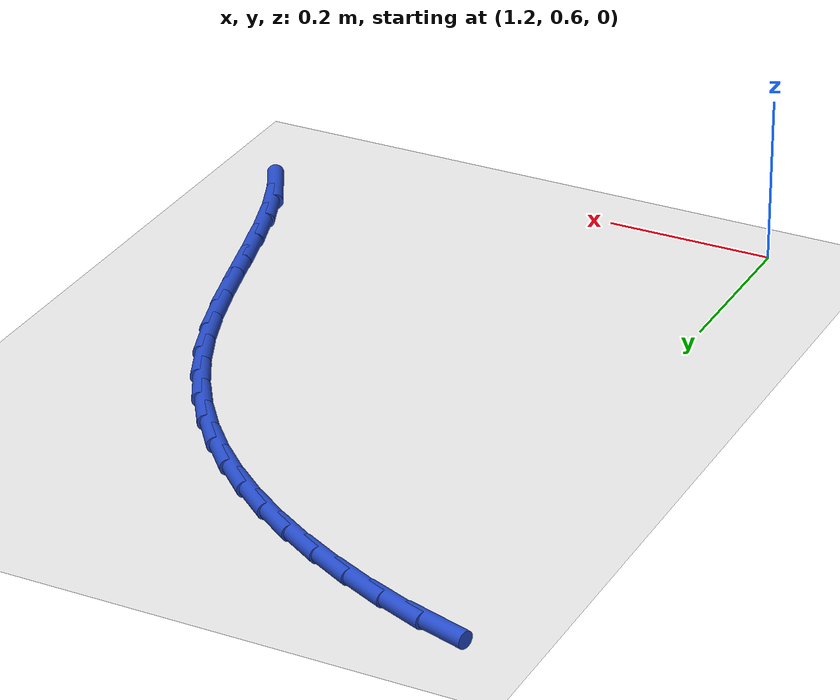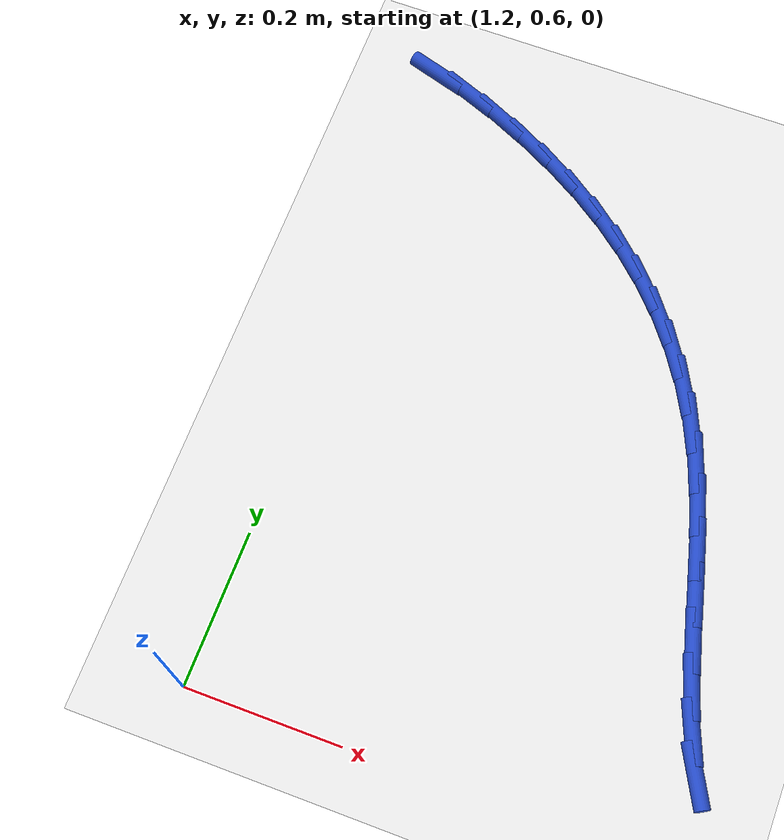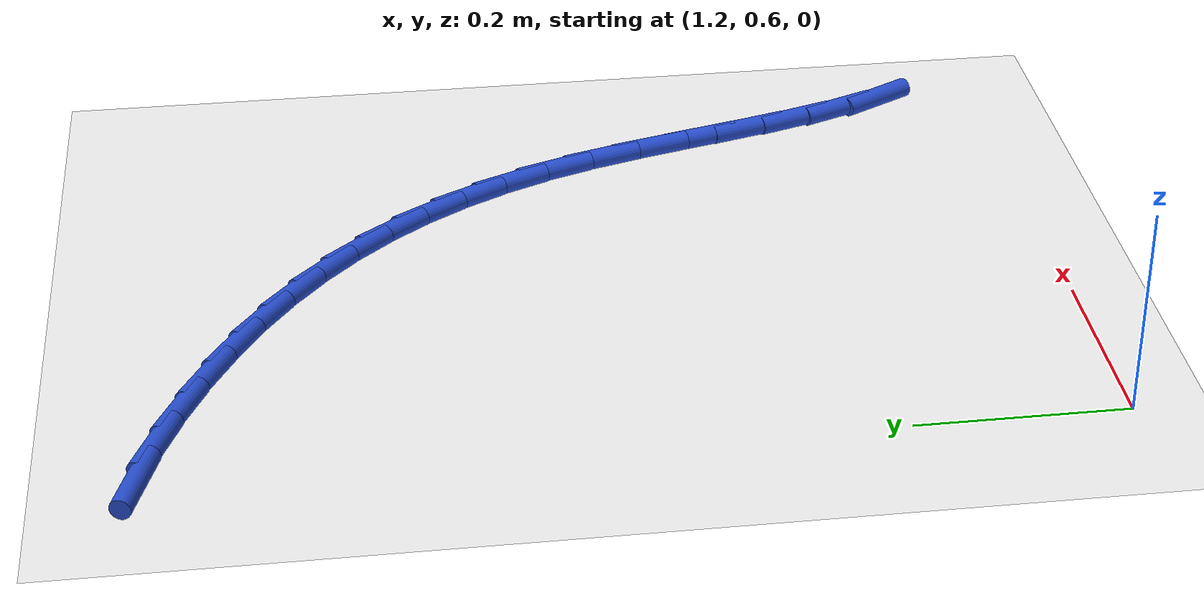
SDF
<sdf version="1.6">
 <world name="default">
  <model name="ground_plane">
   <static>1</static>
   <link name="link">
    <collision name="collision">
     <geometry><plane><normal>0 0 1</normal><size>100 100</size></plane></geometry>
     <surface><friction><ode><mu>100</mu><mu2>50</mu2></ode></friction></surface>
    </collision>
    <visual name="visual">
     <cast_shadows>0</cast_shadows>
     <geometry><plane><normal>0 0 1</normal><size>100 100</size></plane></geometry>
     <material>
      <script><uri>file://media/materials/scripts/gazebo.material</uri><name>Gazebo/WhiteGlow</name></script>
     </material>
    </visual>
   </link>
  </model>
  <model name="line">
   <link name="link_45">
    <pose>1.1903612908195242 1.4757819860433883 0.01 0 1.57 -0.2904586626764423</pose>
    <collision name="collision">
     <geometry><cylinder><radius>0.01</radius><length>0.08</length></cylinder></geometry>
    </collision>
    <visual name="visual">
     <material>
      <script><name>Gazebo/Blue</name><uri>file://media/materials/scripts/gazebo.material</uri></script>
     </material>
     <geometry><cylinder><radius>0.01</radius><length>0.08</length></cylinder></geometry>
    </visual>
   </link>
   <link name="link_46">
    <pose>1.2419302584825567 1.4603673841310085 0.01 0 1.57 -0.37150984166192896</pose>
    <collision name="collision">
     <geometry><cylinder><radius>0.01</radius><length>0.08</length></cylinder></geometry>
    </collision>
    <visual name="visual">
     <material>
      <script><name>Gazebo/Blue</name><uri>file://media/materials/scripts/gazebo.material</uri></script>
     </material>
     <geometry><cylinder><radius>0.01</radius><length>0.08</length></cylinder></geometry>
    </visual>
   </link>
   <link name="link_47">
    <pose>1.2930056261896095 1.4404683616383245 0.01 0 1.57 -0.43012489655888875</pose>
    <collision name="collision">
     <geometry><cylinder><radius>0.01</radius><length>0.08</length></cylinder></geometry>
    </collision>
    <visual name="visual">
     <material>
      <script><name>Gazebo/Blue</name><uri>file://media/materials/scripts/gazebo.material</uri></script>
     </material>
     <geometry><cylinder><radius>0.01</radius><length>0.08</length></cylinder></geometry>
    </visual>
   </link>
   <link name="link_48">
    <pose>1.342085654817382 1.4179518089972698 0.01 0 1.57 -0.48375724945771054</pose>
    <collision name="collision">
     <geometry><cylinder><radius>0.01</radius><length>0.08</length></cylinder></geometry>
    </collision>
    <visual name="visual">
     <material>
      <script><name>Gazebo/Blue</name><uri>file://media/materials/scripts/gazebo.material</uri></script>
     </material>
     <geometry><cylinder><radius>0.01</radius><length>0.08</length></cylinder></geometry>
    </visual>
   </link>
   <link name="link_49">
    <pose>1.3884853993284567 1.3935735769756055 0.01 0 1.57 -0.5429903201972591</pose>
    <collision name="collision">
     <geometry><cylinder><radius>0.01</radius><length>0.08</length></cylinder></geometry>
    </collision>
    <visual name="visual">
     <material>
      <script><name>Gazebo/Blue</name><uri>file://media/materials/scripts/gazebo.material</uri></script>
     </material>
     <geometry><cylinder><radius>0.01</radius><length>0.08</length></cylinder></geometry>
    </visual>
   </link>
   <link name="link_50">
    <pose>1.432163916317122 1.3672135166626165 0.01 0 1.57 -0.6079683005864623</pose>
    <collision name="collision">
     <geometry><cylinder><radius>0.01</radius><length>0.08</length></cylinder></geometry>
    </collision>
    <visual name="visual">
     <material>
      <script><name>Gazebo/Blue</name><uri>file://media/materials/scripts/gazebo.material</uri></script>
     </material>
     <geometry><cylinder><radius>0.01</radius><length>0.08</length></cylinder></geometry>
    </visual>
   </link>
   <link name="link_51">
    <pose>1.473097732593889 1.3387277153820276 0.01 0 1.57 -0.6782926399182265</pose>
    <collision name="collision">
     <geometry><cylinder><radius>0.01</radius><length>0.08</length></cylinder></geometry>
    </collision>
    <visual name="visual">
     <material>
      <script><name>Gazebo/Blue</name><uri>file://media/materials/scripts/gazebo.material</uri></script>
     </material>
     <geometry><cylinder><radius>0.01</radius><length>0.08</length></cylinder></geometry>
    </visual>
   </link>
   <link name="link_52">
    <pose>1.5112633749692708 1.3079722604575639 0.01 0 1.57 -0.7532400528829039</pose>
    <collision name="collision">
     <geometry><cylinder><radius>0.01</radius><length>0.08</length></cylinder></geometry>
    </collision>
    <visual name="visual">
     <material>
      <script><name>Gazebo/Blue</name><uri>file://media/materials/scripts/gazebo.material</uri></script>
     </material>
     <geometry><cylinder><radius>0.01</radius><length>0.08</length></cylinder></geometry>
    </visual>
   </link>
   <link name="link_53">
    <pose>1.546637370253779 1.2748032392129511 0.01 0 1.57 -0.8317529804975258</pose>
    <collision name="collision">
     <geometry><cylinder><radius>0.01</radius><length>0.08</length></cylinder></geometry>
    </collision>
    <visual name="visual">
     <material>
      <script><name>Gazebo/Blue</name><uri>file://media/materials/scripts/gazebo.material</uri></script>
     </material>
     <geometry><cylinder><radius>0.01</radius><length>0.08</length></cylinder></geometry>
    </visual>
   </link>
   <link name="link_54">
    <pose>1.579196245257926 1.2390767389719142 0.01 0 1.57 -0.9124842013625839</pose>
    <collision name="collision">
     <geometry><cylinder><radius>0.01</radius><length>0.08</length></cylinder></geometry>
    </collision>
    <visual name="visual">
     <material>
      <script><name>Gazebo/Blue</name><uri>file://media/materials/scripts/gazebo.material</uri></script>
     </material>
     <geometry><cylinder><radius>0.01</radius><length>0.08</length></cylinder></geometry>
    </visual>
   </link>
   <link name="link_55">
    <pose>1.6089165267922243 1.2006488470581775 0.01 0 1.57 -0.9938994518358901</pose>
    <collision name="collision">
     <geometry><cylinder><radius>0.01</radius><length>0.08</length></cylinder></geometry>
    </collision>
    <visual name="visual">
     <material>
      <script><name>Gazebo/Blue</name><uri>file://media/materials/scripts/gazebo.material</uri></script>
     </material>
     <geometry><cylinder><radius>0.01</radius><length>0.08</length></cylinder></geometry>
    </visual>
   </link>
   <link name="link_56">
    <pose>1.6357747416671855 1.1593756507954671 0.01 0 1.57 -1.0744224634320925</pose>
    <collision name="collision">
     <geometry><cylinder><radius>0.01</radius><length>0.08</length></cylinder></geometry>
    </collision>
    <visual name="visual">
     <material>
      <script><name>Gazebo/Blue</name><uri>file://media/materials/scripts/gazebo.material</uri></script>
     </material>
     <geometry><cylinder><radius>0.01</radius><length>0.08</length></cylinder></geometry>
    </visual>
   </link>
   <link name="link_57">
    <pose>1.6597474166933224 1.1151132375075077 0.01 0 1.57 -1.1525900352057565</pose>
    <collision name="collision">
     <geometry><cylinder><radius>0.01</radius><length>0.08</length></cylinder></geometry>
    </collision>
    <visual name="visual">
     <material>
      <script><name>Gazebo/Blue</name><uri>file://media/materials/scripts/gazebo.material</uri></script>
     </material>
     <geometry><cylinder><radius>0.01</radius><length>0.08</length></cylinder></geometry>
    </visual>
   </link>
   <link name="link_58">
    <pose>1.6808110786811465 1.0677176945180238 0.01 0 1.57 -1.2253568373779555</pose>
    <collision name="collision">
     <geometry><cylinder><radius>0.01</radius><length>0.08</length></cylinder></geometry>
    </collision>
    <visual name="visual">
     <material>
      <script><name>Gazebo/Blue</name><uri>file://media/materials/scripts/gazebo.material</uri></script>
     </material>
     <geometry><cylinder><radius>0.01</radius><length>0.08</length></cylinder></geometry>
    </visual>
   </link>
   <link name="link_59">
    <pose>1.6990101565443534 1.0171462796611783 0.01 0 1.57 -1.277911295845203</pose>
    <collision name="collision">
     <geometry><cylinder><radius>0.01</radius><length>0.08</length></cylinder></geometry>
    </collision>
    <visual name="visual">
     <material>
      <script><name>Gazebo/Blue</name><uri>file://media/materials/scripts/gazebo.material</uri></script>
     </material>
     <geometry><cylinder><radius>0.01</radius><length>0.08</length></cylinder></geometry>
    </visual>
   </link>
   <link name="link_60">
    <pose>1.7149699516670351 0.9642217197562436 0.01 0 1.57 -1.306111012763367</pose>
    <collision name="collision">
     <geometry><cylinder><radius>0.01</radius><length>0.08</length></cylinder></geometry>
    </collision>
    <visual name="visual">
     <material>
      <script><name>Gazebo/Blue</name><uri>file://media/materials/scripts/gazebo.material</uri></script>
     </material>
     <geometry><cylinder><radius>0.01</radius><length>0.08</length></cylinder></geometry>
    </visual>
   </link>
   <link name="link_61">
    <pose>1.7296106138185892 0.9102060499832694 0.01 0 1.57 -1.3121663145126359</pose>
    <collision name="collision">
     <geometry><cylinder><radius>0.01</radius><length>0.08</length></cylinder></geometry>
    </collision>
    <visual name="visual">
     <material>
      <script><name>Gazebo/Blue</name><uri>file://media/materials/scripts/gazebo.material</uri></script>
     </material>
     <geometry><cylinder><radius>0.01</radius><length>0.08</length></cylinder></geometry>
    </visual>
   </link>
   <link name="link_62">
    <pose>1.74385460582124 0.8563647518475959 0.01 0 1.57 -1.2960652116952824</pose>
    <collision name="collision">
     <geometry><cylinder><radius>0.01</radius><length>0.08</length></cylinder></geometry>
    </collision>
    <visual name="visual">
     <material>
      <script><name>Gazebo/Blue</name><uri>file://media/materials/scripts/gazebo.material</uri></script>
     </material>
     <geometry><cylinder><radius>0.01</radius><length>0.08</length></cylinder></geometry>
    </visual>
   </link>
   <link name="link_63">
    <pose>1.7586243904972136 0.8039633068545613 0.01 0 1.57 -1.2553490747021114</pose>
    <collision name="collision">
     <geometry><cylinder><radius>0.01</radius><length>0.08</length></cylinder></geometry>
    </collision>
    <visual name="visual">
     <material>
      <script><name>Gazebo/Blue</name><uri>file://media/materials/scripts/gazebo.material</uri></script>
     </material>
     <geometry><cylinder><radius>0.01</radius><length>0.08</length></cylinder></geometry>
    </visual>
   </link>
   <link name="link_64">
    <pose>1.774842430668736 0.7542671965095069 0.01 0 1.57 -1.1846723200631302</pose>
    <collision name="collision">
     <geometry><cylinder><radius>0.01</radius><length>0.08</length></cylinder></geometry>
    </collision>
    <visual name="visual">
     <material>
      <script><name>Gazebo/Blue</name><uri>file://media/materials/scripts/gazebo.material</uri></script>
     </material>
     <geometry><cylinder><radius>0.01</radius><length>0.08</length></cylinder></geometry>
    </visual>
   </link>
   <link name="link_65">
    <pose>1.7934311891580335 0.7085419023177721 0.01 0 1.57 -1.075321195104579</pose>
    <collision name="collision">
     <geometry><cylinder><radius>0.01</radius><length>0.08</length></cylinder></geometry>
    </collision>
    <visual name="visual">
     <material>
      <script><name>Gazebo/Blue</name><uri>file://media/materials/scripts/gazebo.material</uri></script>
     </material>
     <geometry><cylinder><radius>0.01</radius><length>0.08</length></cylinder></geometry>
    </visual>
   </link>
  </model>
 </world>
</sdf>
